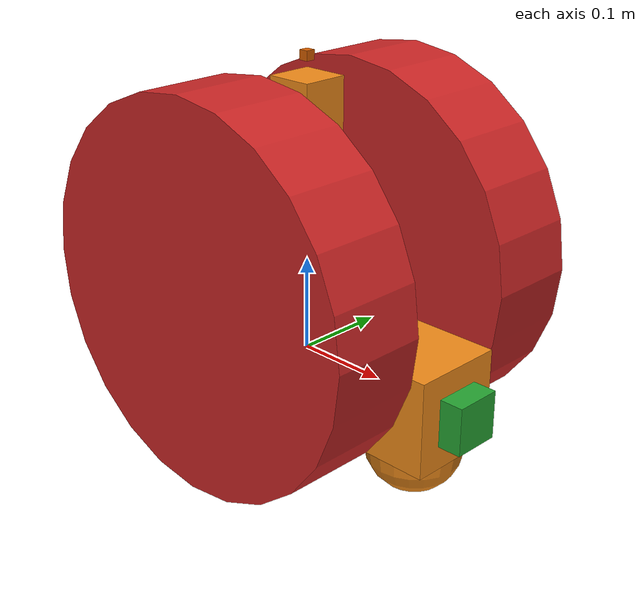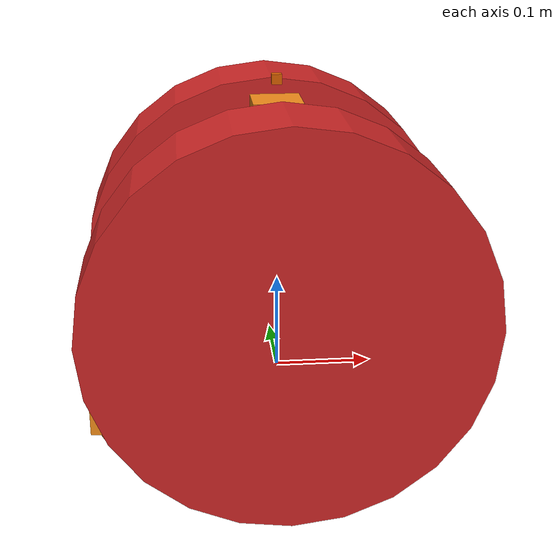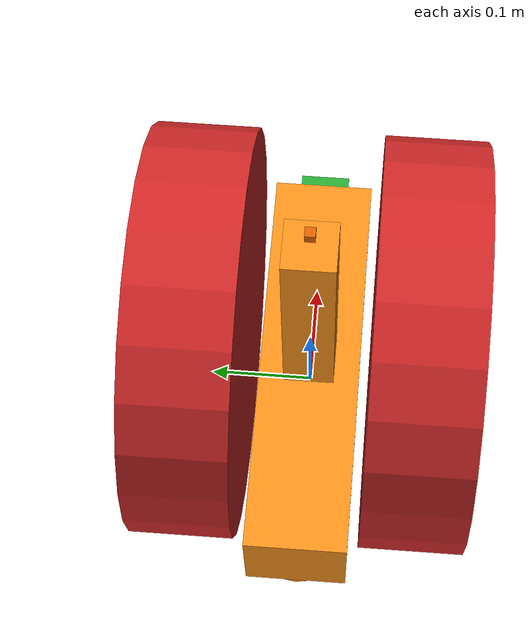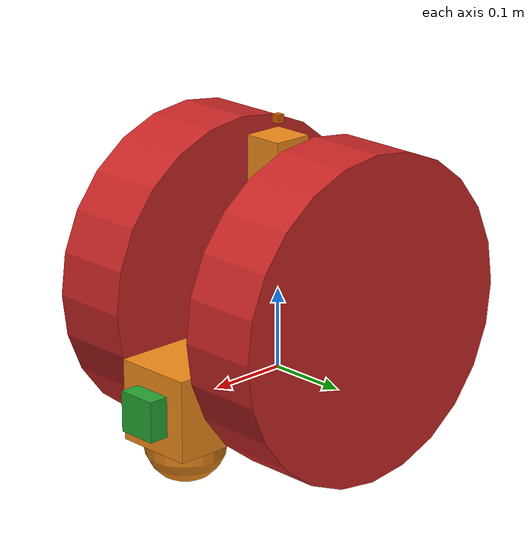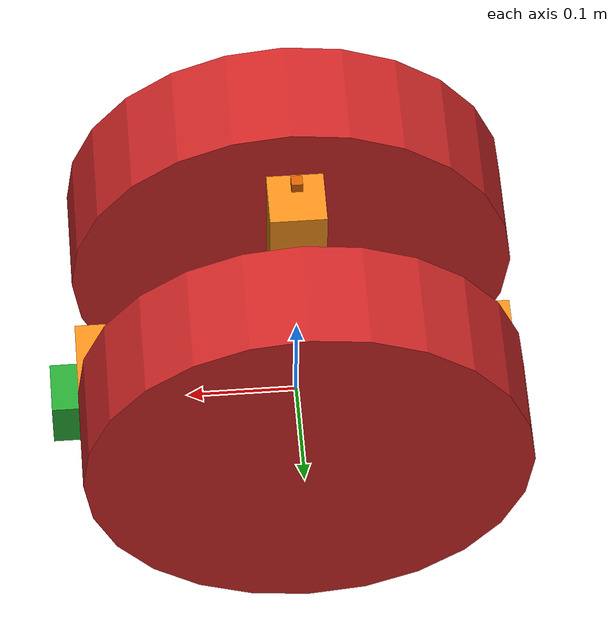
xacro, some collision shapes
<?xml version='1.0'?>

<robot name="udacity_bot" xmlns:xacro="http://www.ros.org/wiki/xacro">

  <xacro:include filename="$(find udacity_bot)/urdf/udacity_bot2.gazebo" />

  <link name="robot_footprint"></link>

  <joint name="robot_footprint_joint" type="fixed">
    <origin xyz="0 0 0" rpy="0 0 0" />
    <parent link="robot_footprint"/>
    <child link="chassis" />
  </joint>

  <link name='chassis'>
    <pose>0 0 0.1 0 0 0</pose>

    <inertial>
      <mass value="15.0"/>
      <origin xyz="0.0 0 0" rpy=" 0 0 0"/>
      <inertia
          ixx="0.1" ixy="0" ixz="0"
          iyy="0.1" iyz="0"
          izz="0.1"
      />
    </inertial>

    <collision name='collision'>
      <origin xyz="0 0 0" rpy=" 0 0 0"/>
      <geometry>
        <box size=".4 .1 .1"/>
      </geometry>
    </collision>

    <visual name='chassis_visual'>
      <origin xyz="0 0 0" rpy=" 0 0 0"/>
      <geometry>
        <box size=".4 .1 .1"/>
      </geometry>
    </visual>

    <collision name='back_caster_collision'>
      <origin xyz="-0.15 0 -0.05" rpy=" 0 0 0"/>
      <geometry>
        <sphere radius="0.0499"/>
      </geometry>
      <surface>
        <friction>
          <ode>
            <mu>0</mu>
            <mu2>0</mu2>
            <slip1>1.0</slip1>
            <slip2>1.0</slip2>
          </ode>
        </friction>
      </surface>
    </collision>

    <visual name='back_caster_visual'>
      <origin xyz="-0.15 0 -0.05" rpy=" 0 0 0"/>
      <geometry>
        <sphere radius="0.0499"/>
      </geometry>
    </visual>

    <collision name='front_caster_collision'>
      <origin xyz="0.15 0 -0.05" rpy=" 0 0 0"/>
      <geometry>
        <sphere radius="0.05"/>
      </geometry>
      <surface>
        <friction>
          <ode>
            <mu>0</mu>
            <mu2>0</mu2>
            <slip1>1.0</slip1>
            <slip2>1.0</slip2>
          </ode>
        </friction>
      </surface>
    </collision>

    <visual name='front_caster_visual'>
      <origin xyz="0.15 0 -0.05" rpy=" 0 0 0"/>
      <geometry>
        <sphere radius="0.05"/>
      </geometry>
    </visual>

    <collision name='periscope_collision'>
      <origin xyz="0 0 0.14" rpy=" 0 0 0"/>
      <geometry>
        <box size=".05 .05 .3"/>
      </geometry>
    </collision>

    <visual name='periscope_visual'>
      <origin xyz="0 0 0.14" rpy=" 0 0 0"/>
      <geometry>
        <box size=".05 .05 .3"/>
      </geometry>
    </visual>

  </link>

  <link name='left_wheel'>
    <inertial>
      <mass value="5.0"/>
      <origin xyz="0 0 0" rpy="0 1.5707 1.5707"/>
      <inertia
          ixx="0.1" ixy="0" ixz="0"
          iyy="0.1" iyz="0"
          izz="0.1"
      />
    </inertial>

    <collision name='collision'>
      <origin xyz="0 0 0" rpy="0 1.5707 1.5707"/>
      <geometry>
        <cylinder radius="0.2" length="0.1"/>
      </geometry>
    </collision>

    <visual name='left_wheel_visual'>
      <origin xyz="0 0 0" rpy="0 1.5707 1.5707"/>
      <geometry>
        <cylinder radius="0.2" length="0.1"/>
      </geometry>
    </visual>
  </link>

  <joint type="continuous" name="left_wheel_hinge">
    <origin xyz="0 0.11 0.1" rpy="0 0 0"/>
    <child link="left_wheel"/>
    <parent link="chassis"/>
    <axis xyz="0 1 0" rpy="0 0 0"/>
    <limit effort="10000" velocity="1000"/>
    <joint_properties damping="1.0" friction="1.0"/>
  </joint>

  <link name='right_wheel'>
    <inertial>
      <mass value="5.0"/>
      <origin xyz="0 0 0" rpy="0 1.5707 1.5707"/>
      <inertia
          ixx="0.1" ixy="0" ixz="0"
          iyy="0.1" iyz="0"
          izz="0.1"
      />
    </inertial>

    <collision name='collision'>
      <origin xyz="0 0 0" rpy="0 1.5707 1.5707"/>
      <geometry>
        <cylinder radius="0.2" length="0.1"/>
      </geometry>
    </collision>

    <visual name='right_wheel_visual'>
      <origin xyz="0 0 0" rpy="0 1.5707 1.5707"/>
      <geometry>
        <cylinder radius="0.2" length="0.1"/>
      </geometry>
    </visual>
  </link>

  <joint type="continuous" name="right_wheel_hinge">
    <origin xyz="0 -0.11 0.1" rpy="0 0 0"/>
    <child link="right_wheel"/>
    <parent link="chassis"/>
    <axis xyz="0 1 0" rpy="0 0 0"/>
    <limit effort="10000" velocity="1000"/>
    <joint_properties damping="1.0" friction="1.0"/>
  </joint>

  <link name='camera'>
    <inertial>
      <mass value="0.1"/>
      <origin xyz="0 0 0" rpy="0 0 0"/>
      <inertia
           ixx="1e-6" ixy="0" ixz="0"
           iyy="1e-6" iyz="0"
           izz="1e-6"
      />
    </inertial>

    <collision name='collision'>
      <origin xyz="0 0 0" rpy="0 0 0"/>
      <geometry>
        <box size="0.05 0.05 0.05"/>
      </geometry>
    </collision>

    <visual name='camera_visual'>
      <origin xyz="0 0 0" rpy="0 0 0"/>
      <geometry>
        <box size="0.05 0.05 0.05"/>
      </geometry>
    </visual>
  </link>

  <joint type="fixed" name="camera_joint">
    <origin xyz="0.2 0  0" rpy="0 0 0"/>
    <child link="camera"/>
    <parent link="chassis"/>
    <axis xyz="0 1 0" rpy="0 0 0"/>
    <limit effort="10000" velocity="1000"/>
    <joint_properties damping="1.0" friction="1.0"/>
  </joint>

  <link name='hokuyo'>
    <inertial>
      <mass value="0.1"/>
      <origin xyz="0 0 0" rpy="0 0 0"/>
      <inertia
           ixx="1e-6" ixy="0" ixz="0"
           iyy="1e-6" iyz="0"
           izz="1e-6"
      />
    </inertial>

    <collision name='collision'>
      <origin xyz="0 0 0" rpy="0 0 0"/>
      <geometry>
        <box size="0.01 0.01 0.01"/>
      </geometry>
    </collision>

    <visual name='chassis_visual'>
      <origin xyz="0 0 0" rpy="0 0 0"/>
      <geometry>
        <mesh filename="package://udacity_bot/meshes/hokuyo.dae"/>
      </geometry>
    </visual>
  </link>

  <joint type="fixed" name="hokuyo_joint">
    <origin xyz="0 0 0.31" rpy="0 0 0"/>
    <child link="hokuyo"/>
    <parent link="chassis"/>
    <axis xyz="0 1 0" rpy="0 0 0"/>
    <limit effort="10000" velocity="1000"/>
    <joint_properties damping="1.0" friction="1.0"/>
  </joint>

</robot>
